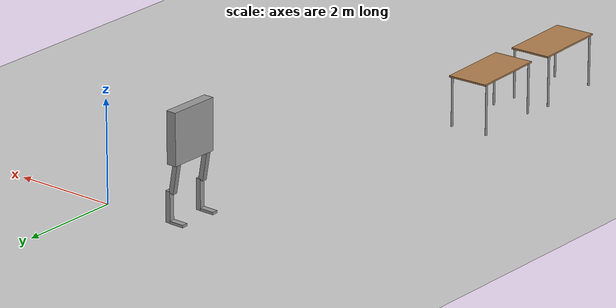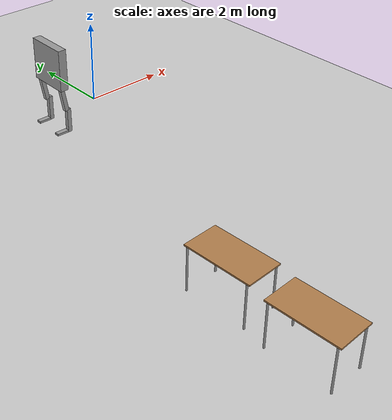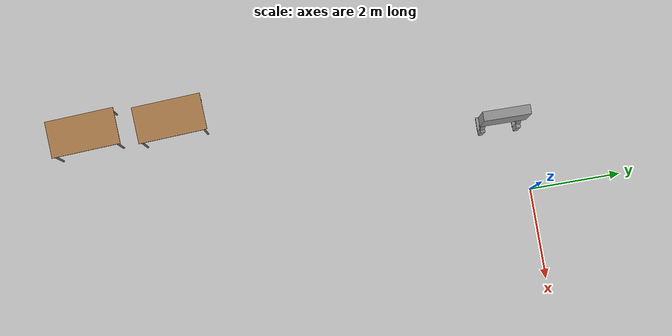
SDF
<sdf version="1.7">
 <world name="default">
  <model name="ground_plane">
   <static>1</static>
   <link name="link">
    <collision name="collision">
     <geometry><plane><normal>0 0 1</normal><size>100 100</size></plane></geometry>
     <surface>
      <contact><collide_bitmask>65535</collide_bitmask></contact>
      <friction><ode><mu>100</mu><mu2>50</mu2></ode></friction>
     </surface>
    </collision>
    <visual name="visual">
     <cast_shadows>0</cast_shadows>
     <geometry><plane><normal>0 0 1</normal><size>100 100</size></plane></geometry>
     <material>
      <script><uri>file://media/materials/scripts/gazebo.material</uri><name>Gazebo/Grey</name></script>
     </material>
    </visual>
   </link>
  </model>
  <model name="robot">
   <link name="link_0">
    <inertial>
     <mass>1</mass>
     <inertia>
      <ixx>0.166667</ixx>
      <ixy>0</ixy>
      <ixz>0</ixz>
      <iyy>0.166667</iyy>
      <iyz>0</iyz>
      <izz>0.166667</izz>
     </inertia>
    </inertial>
    <pose>-0.102564 -0.385129 -0.54615 0 -0 0</pose>
    <visual name="visual">
     <geometry><box><size>0.3 0.12 0.05</size></box></geometry>
     <material>
      <lighting>1</lighting>
      <script><uri>file://media/materials/scripts/gazebo.material</uri><name>Gazebo/Grey</name></script>
      <shader type="pixel"><normal_map>__default__</normal_map></shader>
      <ambient>0.3 0.3 0.3 1</ambient>
      <diffuse>0.7 0.7 0.7 1</diffuse>
      <specular>0.01 0.01 0.01 1</specular>
      <emissive>0 0 0 1</emissive>
     </material>
    </visual>
    <collision name="collision">
     <geometry><box><size>0.3 0.12 0.05</size></box></geometry>
     <surface>
      <friction>
       <ode><mu>1</mu><mu2>1</mu2><fdir1>0 0 0</fdir1><slip1>0</slip1><slip2>0</slip2></ode>
       <torsional>
        <coefficient>1</coefficient>
        <patch_radius>0</patch_radius>
        <surface_radius>0</surface_radius>
        <use_patch_radius>1</use_patch_radius>
        <ode><slip>0</slip></ode>
       </torsional>
      </friction>
      <bounce><restitution_coefficient>0</restitution_coefficient><threshold>1e+06</threshold></bounce>
      <contact>
       <collide_without_contact>0</collide_without_contact>
       <collide_without_contact_bitmask>1</collide_without_contact_bitmask>
       <collide_bitmask>1</collide_bitmask>
       <ode>
        <soft_cfm>0</soft_cfm>
        <soft_erp>0.2</soft_erp>
        <kp>1e+13</kp>
        <kd>1</kd>
        <max_vel>0.01</max_vel>
        <min_depth>0</min_depth>
       </ode>
       <bullet>
        <split_impulse>1</split_impulse>
        <split_impulse_penetration_threshold>-0.01</split_impulse_penetration_threshold>
        <soft_cfm>0</soft_cfm>
        <soft_erp>0.2</soft_erp>
        <kp>1e+13</kp>
        <kd>1</kd>
       </bullet>
      </contact>
     </surface>
    </collision>
   </link>
   <link name="link_0_clone">
    <inertial>
     <mass>1</mass>
     <inertia>
      <ixx>0.166667</ixx>
      <ixy>0</ixy>
      <ixz>0</ixz>
      <iyy>0.166667</iyy>
      <iyz>0</iyz>
      <izz>0.166667</izz>
     </inertia>
    </inertial>
    <pose>-0.07904 0.389881 -0.55115 0 -0 0</pose>
    <visual name="visual">
     <geometry><box><size>0.3 0.12 0.05</size></box></geometry>
     <material>
      <lighting>1</lighting>
      <script><uri>file://media/materials/scripts/gazebo.material</uri><name>Gazebo/Grey</name></script>
      <shader type="pixel"><normal_map>__default__</normal_map></shader>
      <ambient>0.3 0.3 0.3 1</ambient>
      <diffuse>0.7 0.7 0.7 1</diffuse>
      <specular>0.01 0.01 0.01 1</specular>
      <emissive>0 0 0 1</emissive>
     </material>
    </visual>
    <collision name="collision">
     <geometry><box><size>0.3 0.12 0.05</size></box></geometry>
     <surface>
      <friction>
       <ode><mu>1</mu><mu2>1</mu2><fdir1>0 0 0</fdir1><slip1>0</slip1><slip2>0</slip2></ode>
       <torsional>
        <coefficient>1</coefficient>
        <patch_radius>0</patch_radius>
        <surface_radius>0</surface_radius>
        <use_patch_radius>1</use_patch_radius>
        <ode><slip>0</slip></ode>
       </torsional>
      </friction>
      <bounce><restitution_coefficient>0</restitution_coefficient><threshold>1e+06</threshold></bounce>
      <contact>
       <collide_without_contact>0</collide_without_contact>
       <collide_without_contact_bitmask>1</collide_without_contact_bitmask>
       <collide_bitmask>1</collide_bitmask>
       <ode>
        <soft_cfm>0</soft_cfm>
        <soft_erp>0.2</soft_erp>
        <kp>1e+13</kp>
        <kd>1</kd>
        <max_vel>0.01</max_vel>
        <min_depth>0</min_depth>
       </ode>
       <bullet>
        <split_impulse>1</split_impulse>
        <split_impulse_penetration_threshold>-0.01</split_impulse_penetration_threshold>
        <soft_cfm>0</soft_cfm>
        <soft_erp>0.2</soft_erp>
        <kp>1e+13</kp>
        <kd>1</kd>
       </bullet>
      </contact>
     </surface>
    </collision>
   </link>
   <link name="link_1">
    <inertial>
     <mass>1</mass>
     <inertia>
      <ixx>0.166667</ixx>
      <ixy>0</ixy>
      <ixz>0</ixz>
      <iyy>0.166667</iyy>
      <iyz>0</iyz>
      <izz>0.166667</izz>
     </inertia>
    </inertial>
    <pose>0.097436 -0.390129 -0.27615 0 -0 0</pose>
    <visual name="visual">
     <geometry><box><size>0.1 0.1 0.6</size></box></geometry>
     <material>
      <lighting>1</lighting>
      <script><uri>file://media/materials/scripts/gazebo.material</uri><name>Gazebo/Grey</name></script>
      <shader type="pixel"><normal_map>__default__</normal_map></shader>
      <ambient>0.3 0.3 0.3 1</ambient>
      <diffuse>0.7 0.7 0.7 1</diffuse>
      <specular>0.01 0.01 0.01 1</specular>
      <emissive>0 0 0 1</emissive>
     </material>
    </visual>
    <collision name="collision">
     <geometry><box><size>0.1 0.1 0.6</size></box></geometry>
     <surface>
      <friction>
       <ode><mu>1</mu><mu2>1</mu2><fdir1>0 0 0</fdir1><slip1>0</slip1><slip2>0</slip2></ode>
       <torsional>
        <coefficient>1</coefficient>
        <patch_radius>0</patch_radius>
        <surface_radius>0</surface_radius>
        <use_patch_radius>1</use_patch_radius>
        <ode><slip>0</slip></ode>
       </torsional>
      </friction>
      <bounce><restitution_coefficient>0</restitution_coefficient><threshold>1e+06</threshold></bounce>
      <contact>
       <collide_without_contact>0</collide_without_contact>
       <collide_without_contact_bitmask>1</collide_without_contact_bitmask>
       <collide_bitmask>1</collide_bitmask>
       <ode>
        <soft_cfm>0</soft_cfm>
        <soft_erp>0.2</soft_erp>
        <kp>1e+13</kp>
        <kd>1</kd>
        <max_vel>0.01</max_vel>
        <min_depth>0</min_depth>
       </ode>
       <bullet>
        <split_impulse>1</split_impulse>
        <split_impulse_penetration_threshold>-0.01</split_impulse_penetration_threshold>
        <soft_cfm>0</soft_cfm>
        <soft_erp>0.2</soft_erp>
        <kp>1e+13</kp>
        <kd>1</kd>
       </bullet>
      </contact>
     </surface>
    </collision>
   </link>
   <link name="link_1_clone">
    <inertial>
     <mass>1</mass>
     <inertia>
      <ixx>0.166667</ixx>
      <ixy>0</ixy>
      <ixz>0</ixz>
      <iyy>0.166667</iyy>
      <iyz>0</iyz>
      <izz>0.166667</izz>
     </inertia>
    </inertial>
    <pose>0.12096 0.389881 -0.27615 0 -0 0</pose>
    <visual name="visual">
     <geometry><box><size>0.1 0.1 0.6</size></box></geometry>
     <material>
      <lighting>1</lighting>
      <script><uri>file://media/materials/scripts/gazebo.material</uri><name>Gazebo/Grey</name></script>
      <shader type="pixel"><normal_map>__default__</normal_map></shader>
      <ambient>0.3 0.3 0.3 1</ambient>
      <diffuse>0.7 0.7 0.7 1</diffuse>
      <specular>0.01 0.01 0.01 1</specular>
      <emissive>0 0 0 1</emissive>
     </material>
    </visual>
    <collision name="collision">
     <geometry><box><size>0.1 0.1 0.6</size></box></geometry>
     <surface>
      <friction>
       <ode><mu>1</mu><mu2>1</mu2><fdir1>0 0 0</fdir1><slip1>0</slip1><slip2>0</slip2></ode>
       <torsional>
        <coefficient>1</coefficient>
        <patch_radius>0</patch_radius>
        <surface_radius>0</surface_radius>
        <use_patch_radius>1</use_patch_radius>
        <ode><slip>0</slip></ode>
       </torsional>
      </friction>
      <bounce><restitution_coefficient>0</restitution_coefficient><threshold>1e+06</threshold></bounce>
      <contact>
       <collide_without_contact>0</collide_without_contact>
       <collide_without_contact_bitmask>1</collide_without_contact_bitmask>
       <collide_bitmask>1</collide_bitmask>
       <ode>
        <soft_cfm>0</soft_cfm>
        <soft_erp>0.2</soft_erp>
        <kp>1e+13</kp>
        <kd>1</kd>
        <max_vel>0.01</max_vel>
        <min_depth>0</min_depth>
       </ode>
       <bullet>
        <split_impulse>1</split_impulse>
        <split_impulse_penetration_threshold>-0.01</split_impulse_penetration_threshold>
        <soft_cfm>0</soft_cfm>
        <soft_erp>0.2</soft_erp>
        <kp>1e+13</kp>
        <kd>1</kd>
       </bullet>
      </contact>
     </surface>
    </collision>
   </link>
   <link name="link_1_clone_clone_clone">
    <inertial>
     <mass>1</mass>
     <inertia>
      <ixx>0.166667</ixx>
      <ixy>0</ixy>
      <ixz>0</ixz>
      <iyy>0.166667</iyy>
      <iyz>0</iyz>
      <izz>0.166667</izz>
     </inertia>
    </inertial>
    <pose>-0.005591 0.389882 0.28797 0 -0.175856 0</pose>
    <visual name="visual">
     <geometry><box><size>0.1 0.1 0.6</size></box></geometry>
     <material>
      <lighting>1</lighting>
      <script><uri>file://media/materials/scripts/gazebo.material</uri><name>Gazebo/Grey</name></script>
      <shader type="pixel"><normal_map>__default__</normal_map></shader>
      <ambient>0.3 0.3 0.3 1</ambient>
      <diffuse>0.7 0.7 0.7 1</diffuse>
      <specular>0.01 0.01 0.01 1</specular>
      <emissive>0 0 0 1</emissive>
     </material>
    </visual>
    <collision name="collision">
     <geometry><box><size>0.1 0.1 0.6</size></box></geometry>
     <surface>
      <friction>
       <ode><mu>1</mu><mu2>1</mu2><fdir1>0 0 0</fdir1><slip1>0</slip1><slip2>0</slip2></ode>
       <torsional>
        <coefficient>1</coefficient>
        <patch_radius>0</patch_radius>
        <surface_radius>0</surface_radius>
        <use_patch_radius>1</use_patch_radius>
        <ode><slip>0</slip></ode>
       </torsional>
      </friction>
      <bounce><restitution_coefficient>0</restitution_coefficient><threshold>1e+06</threshold></bounce>
      <contact>
       <collide_without_contact>0</collide_without_contact>
       <collide_without_contact_bitmask>1</collide_without_contact_bitmask>
       <collide_bitmask>1</collide_bitmask>
       <ode>
        <soft_cfm>0</soft_cfm>
        <soft_erp>0.2</soft_erp>
        <kp>1e+13</kp>
        <kd>1</kd>
        <max_vel>0.01</max_vel>
        <min_depth>0</min_depth>
       </ode>
       <bullet>
        <split_impulse>1</split_impulse>
        <split_impulse_penetration_threshold>-0.01</split_impulse_penetration_threshold>
        <soft_cfm>0</soft_cfm>
        <soft_erp>0.2</soft_erp>
        <kp>1e+13</kp>
        <kd>1</kd>
       </bullet>
      </contact>
     </surface>
    </collision>
   </link>
   <link name="link_1_clone_clone_clone_clone">
    <inertial>
     <mass>1</mass>
     <inertia>
      <ixx>0.166667</ixx>
      <ixy>0</ixy>
      <ixz>0</ixz>
      <iyy>0.166667</iyy>
      <iyz>0</iyz>
      <izz>0.166667</izz>
     </inertia>
    </inertial>
    <pose>-0.005591 -0.395129 0.29797 0 -0.175856 0</pose>
    <visual name="visual">
     <geometry><box><size>0.1 0.1 0.6</size></box></geometry>
     <material>
      <lighting>1</lighting>
      <script><uri>file://media/materials/scripts/gazebo.material</uri><name>Gazebo/Grey</name></script>
      <shader type="pixel"><normal_map>__default__</normal_map></shader>
      <ambient>0.3 0.3 0.3 1</ambient>
      <diffuse>0.7 0.7 0.7 1</diffuse>
      <specular>0.01 0.01 0.01 1</specular>
      <emissive>0 0 0 1</emissive>
     </material>
    </visual>
    <collision name="collision">
     <geometry><box><size>0.1 0.1 0.6</size></box></geometry>
     <surface>
      <friction>
       <ode><mu>1</mu><mu2>1</mu2><fdir1>0 0 0</fdir1><slip1>0</slip1><slip2>0</slip2></ode>
       <torsional>
        <coefficient>1</coefficient>
        <patch_radius>0</patch_radius>
        <surface_radius>0</surface_radius>
        <use_patch_radius>1</use_patch_radius>
        <ode><slip>0</slip></ode>
       </torsional>
      </friction>
      <bounce><restitution_coefficient>0</restitution_coefficient><threshold>1e+06</threshold></bounce>
      <contact>
       <collide_without_contact>0</collide_without_contact>
       <collide_without_contact_bitmask>1</collide_without_contact_bitmask>
       <collide_bitmask>1</collide_bitmask>
       <ode>
        <soft_cfm>0</soft_cfm>
        <soft_erp>0.2</soft_erp>
        <kp>1e+13</kp>
        <kd>1</kd>
        <max_vel>0.01</max_vel>
        <min_depth>0</min_depth>
       </ode>
       <bullet>
        <split_impulse>1</split_impulse>
        <split_impulse_penetration_threshold>-0.01</split_impulse_penetration_threshold>
        <soft_cfm>0</soft_cfm>
        <soft_erp>0.2</soft_erp>
        <kp>1e+13</kp>
        <kd>1</kd>
       </bullet>
      </contact>
     </surface>
    </collision>
   </link>
   <link name="link_3">
    <inertial>
     <mass>1</mass>
     <inertia>
      <ixx>0.166667</ixx>
      <ixy>0</ixy>
      <ixz>0</ixz>
      <iyy>0.166667</iyy>
      <iyz>0</iyz>
      <izz>0.166667</izz>
     </inertia>
    </inertial>
    <pose>-0.025591 0.000743 1.06366 0 -0 0</pose>
    <visual name="visual">
     <geometry><box><size>0.2 1 1</size></box></geometry>
     <material>
      <lighting>1</lighting>
      <script><uri>file://media/materials/scripts/gazebo.material</uri><name>Gazebo/Grey</name></script>
      <shader type="pixel"><normal_map>__default__</normal_map></shader>
      <ambient>0.3 0.3 0.3 1</ambient>
      <diffuse>0.7 0.7 0.7 1</diffuse>
      <specular>0.01 0.01 0.01 1</specular>
      <emissive>0 0 0 1</emissive>
     </material>
    </visual>
    <collision name="collision">
     <geometry><box><size>0.2 1 1</size></box></geometry>
     <surface>
      <friction>
       <ode><mu>1</mu><mu2>1</mu2><fdir1>0 0 0</fdir1><slip1>0</slip1><slip2>0</slip2></ode>
       <torsional>
        <coefficient>1</coefficient>
        <patch_radius>0</patch_radius>
        <surface_radius>0</surface_radius>
        <use_patch_radius>1</use_patch_radius>
        <ode><slip>0</slip></ode>
       </torsional>
      </friction>
      <bounce><restitution_coefficient>0</restitution_coefficient><threshold>1e+06</threshold></bounce>
      <contact>
       <collide_without_contact>0</collide_without_contact>
       <collide_without_contact_bitmask>1</collide_without_contact_bitmask>
       <collide_bitmask>1</collide_bitmask>
       <ode>
        <soft_cfm>0</soft_cfm>
        <soft_erp>0.2</soft_erp>
        <kp>1e+13</kp>
        <kd>1</kd>
        <max_vel>0.01</max_vel>
        <min_depth>0</min_depth>
       </ode>
       <bullet>
        <split_impulse>1</split_impulse>
        <split_impulse_penetration_threshold>-0.01</split_impulse_penetration_threshold>
        <soft_cfm>0</soft_cfm>
        <soft_erp>0.2</soft_erp>
        <kp>1e+13</kp>
        <kd>1</kd>
       </bullet>
      </contact>
     </surface>
    </collision>
   </link>
   <joint name="link_1_JOINT_6" type="revolute">
    <parent>link_1</parent>
    <child>link_1_clone_clone_clone_clone</child>
    <axis>
     <xyz>1 0 0</xyz>
     <limit>
      <lower>-1.79769e+308</lower>
      <upper>1.79769e+308</upper>
      <effort>-1</effort>
      <velocity>-1</velocity>
     </limit>
     <dynamics>
      <spring_reference>0</spring_reference>
      <spring_stiffness>0</spring_stiffness>
      <damping>0</damping>
     </dynamics>
    </axis>
    <physics>
     <ode><limit><cfm>0</cfm><erp>0.2</erp></limit><suspension><cfm>0</cfm><erp>0.2</erp></suspension></ode>
    </physics>
   </joint>
   <joint name="link_1_clone_JOINT_2" type="revolute">
    <parent>link_1_clone</parent>
    <child>link_0_clone</child>
    <axis>
     <xyz>1 0 0</xyz>
     <limit>
      <lower>-1.79769e+308</lower>
      <upper>1.79769e+308</upper>
      <effort>-1</effort>
      <velocity>-1</velocity>
     </limit>
     <dynamics>
      <spring_reference>0</spring_reference>
      <spring_stiffness>0</spring_stiffness>
      <damping>0</damping>
     </dynamics>
    </axis>
    <physics>
     <ode><limit><cfm>0</cfm><erp>0.2</erp></limit><suspension><cfm>0</cfm><erp>0.2</erp></suspension></ode>
    </physics>
   </joint>
   <joint name="link_1_clone_JOINT_5" type="revolute">
    <parent>link_1_clone</parent>
    <child>link_1_clone_clone_clone</child>
    <pose>0 0 -0.05 0 -0 0</pose>
    <axis>
     <xyz>1 0 0</xyz>
     <limit>
      <lower>-1.79769e+308</lower>
      <upper>1.79769e+308</upper>
      <effort>-1</effort>
      <velocity>-1</velocity>
     </limit>
     <dynamics>
      <spring_reference>0</spring_reference>
      <spring_stiffness>0</spring_stiffness>
      <damping>0</damping>
     </dynamics>
    </axis>
    <physics>
     <ode><limit><cfm>0</cfm><erp>0.2</erp></limit><suspension><cfm>0</cfm><erp>0.2</erp></suspension></ode>
    </physics>
   </joint>
   <joint name="link_3_JOINT_7" type="revolute">
    <parent>link_3</parent>
    <child>link_1_clone_clone_clone_clone</child>
    <axis>
     <xyz>1 0 0</xyz>
     <limit>
      <lower>-1.79769e+308</lower>
      <upper>1.79769e+308</upper>
      <effort>-1</effort>
      <velocity>-1</velocity>
     </limit>
     <dynamics>
      <spring_reference>0</spring_reference>
      <spring_stiffness>0</spring_stiffness>
      <damping>0</damping>
     </dynamics>
    </axis>
    <physics>
     <ode><limit><cfm>0</cfm><erp>0.2</erp></limit><suspension><cfm>0</cfm><erp>0.2</erp></suspension></ode>
    </physics>
   </joint>
   <joint name="link_3_JOINT_8" type="revolute">
    <parent>link_3</parent>
    <child>link_1_clone_clone_clone</child>
    <axis>
     <xyz>1 0 0</xyz>
     <limit>
      <lower>-1.79769e+308</lower>
      <upper>1.79769e+308</upper>
      <effort>-1</effort>
      <velocity>-1</velocity>
     </limit>
     <dynamics>
      <spring_reference>0</spring_reference>
      <spring_stiffness>0</spring_stiffness>
      <damping>0</damping>
     </dynamics>
    </axis>
    <physics>
     <ode><limit><cfm>0</cfm><erp>0.2</erp></limit><suspension><cfm>0</cfm><erp>0.2</erp></suspension></ode>
    </physics>
   </joint>
   <static>0</static>
   <pose>-1.49446 -0.480007 0.57115 -0 1e-06 -0.009029</pose>
  </model>
  <model name="table_clone_2_clone_0">
   <static>1</static>
   <link name="link">
    <collision name="surface">
     <pose>0 0 1 0 -0 0</pose>
     <geometry><box><size>1.5 0.8 0.03</size></box></geometry>
     <surface><friction><ode><mu>0.6</mu><mu2>0.6</mu2></ode></friction></surface>
    </collision>
    <visual name="visual1">
     <pose>0 0 1 0 -0 0</pose>
     <geometry><box><size>1.5 0.8 0.03</size></box></geometry>
     <material>
      <script><uri>file://media/materials/scripts/gazebo.material</uri><name>Gazebo/Wood</name></script>
     </material>
    </visual>
    <collision name="front_left_leg">
     <pose>0.68 0.38 0.5 0 -0 0</pose>
     <geometry><cylinder><radius>0.02</radius><length>1</length></cylinder></geometry>
    </collision>
    <visual name="front_left_leg">
     <pose>0.68 0.38 0.5 0 -0 0</pose>
     <geometry><cylinder><radius>0.02</radius><length>1</length></cylinder></geometry>
     <material>
      <script><uri>file://media/materials/scripts/gazebo.material</uri><name>Gazebo/Grey</name></script>
     </material>
    </visual>
    <collision name="front_right_leg">
     <pose>0.68 -0.38 0.5 0 -0 0</pose>
     <geometry><cylinder><radius>0.02</radius><length>1</length></cylinder></geometry>
    </collision>
    <visual name="front_right_leg">
     <pose>0.68 -0.38 0.5 0 -0 0</pose>
     <geometry><cylinder><radius>0.02</radius><length>1</length></cylinder></geometry>
     <material>
      <script><uri>file://media/materials/scripts/gazebo.material</uri><name>Gazebo/Grey</name></script>
     </material>
    </visual>
    <collision name="back_right_leg">
     <pose>-0.68 -0.38 0.5 0 -0 0</pose>
     <geometry><cylinder><radius>0.02</radius><length>1</length></cylinder></geometry>
    </collision>
    <visual name="back_right_leg">
     <pose>-0.68 -0.38 0.5 0 -0 0</pose>
     <geometry><cylinder><radius>0.02</radius><length>1</length></cylinder></geometry>
     <material>
      <script><uri>file://media/materials/scripts/gazebo.material</uri><name>Gazebo/Grey</name></script>
     </material>
    </visual>
    <collision name="back_left_leg">
     <pose>-0.68 0.38 0.5 0 -0 0</pose>
     <geometry><cylinder><radius>0.02</radius><length>1</length></cylinder></geometry>
    </collision>
    <visual name="back_left_leg">
     <pose>-0.68 0.38 0.5 0 -0 0</pose>
     <geometry><cylinder><radius>0.02</radius><length>1</length></cylinder></geometry>
     <material>
      <script><uri>file://media/materials/scripts/gazebo.material</uri><name>Gazebo/Grey</name></script>
     </material>
    </visual>
   </link>
   <pose>-2.75425 -9.39375 0 0 0 -1.52183</pose>
  </model>
  <model name="table_clone_2_clone_2">
   <static>1</static>
   <link name="link">
    <collision name="surface">
     <pose>0 0 1 0 -0 0</pose>
     <geometry><box><size>1.5 0.8 0.03</size></box></geometry>
     <surface><friction><ode><mu>0.6</mu><mu2>0.6</mu2></ode></friction></surface>
    </collision>
    <visual name="visual1">
     <pose>0 0 1 0 -0 0</pose>
     <geometry><box><size>1.5 0.8 0.03</size></box></geometry>
     <material>
      <script><uri>file://media/materials/scripts/gazebo.material</uri><name>Gazebo/Wood</name></script>
     </material>
    </visual>
    <collision name="front_left_leg">
     <pose>0.68 0.38 0.5 0 -0 0</pose>
     <geometry><cylinder><radius>0.02</radius><length>1</length></cylinder></geometry>
    </collision>
    <visual name="front_left_leg">
     <pose>0.68 0.38 0.5 0 -0 0</pose>
     <geometry><cylinder><radius>0.02</radius><length>1</length></cylinder></geometry>
     <material>
      <script><uri>file://media/materials/scripts/gazebo.material</uri><name>Gazebo/Grey</name></script>
     </material>
    </visual>
    <collision name="front_right_leg">
     <pose>0.68 -0.38 0.5 0 -0 0</pose>
     <geometry><cylinder><radius>0.02</radius><length>1</length></cylinder></geometry>
    </collision>
    <visual name="front_right_leg">
     <pose>0.68 -0.38 0.5 0 -0 0</pose>
     <geometry><cylinder><radius>0.02</radius><length>1</length></cylinder></geometry>
     <material>
      <script><uri>file://media/materials/scripts/gazebo.material</uri><name>Gazebo/Grey</name></script>
     </material>
    </visual>
    <collision name="back_right_leg">
     <pose>-0.68 -0.38 0.5 0 -0 0</pose>
     <geometry><cylinder><radius>0.02</radius><length>1</length></cylinder></geometry>
    </collision>
    <visual name="back_right_leg">
     <pose>-0.68 -0.38 0.5 0 -0 0</pose>
     <geometry><cylinder><radius>0.02</radius><length>1</length></cylinder></geometry>
     <material>
      <script><uri>file://media/materials/scripts/gazebo.material</uri><name>Gazebo/Grey</name></script>
     </material>
    </visual>
    <collision name="back_left_leg">
     <pose>-0.68 0.38 0.5 0 -0 0</pose>
     <geometry><cylinder><radius>0.02</radius><length>1</length></cylinder></geometry>
    </collision>
    <visual name="back_left_leg">
     <pose>-0.68 0.38 0.5 0 -0 0</pose>
     <geometry><cylinder><radius>0.02</radius><length>1</length></cylinder></geometry>
     <material>
      <script><uri>file://media/materials/scripts/gazebo.material</uri><name>Gazebo/Grey</name></script>
     </material>
    </visual>
   </link>
   <pose>-2.74728 -7.50919 0 0 0 -1.52183</pose>
  </model>
 </world>
</sdf>
